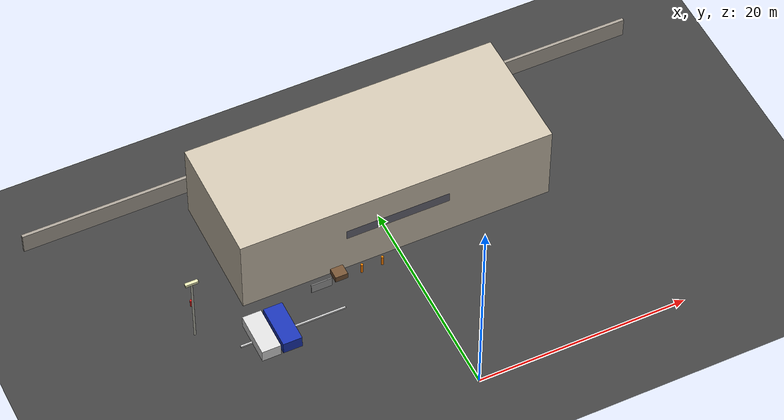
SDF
<sdf version="1.9">
 <world name="togo_parking_lot">
  <model name="ground_plane">
   <static>true</static>
   <link name="link">
    <collision name="collision">
     <geometry><plane><normal>0 0 1</normal><size>200 200</size></plane></geometry>
    </collision>
    <visual name="visual">
     <geometry><plane><normal>0 0 1</normal><size>200 200</size></plane></geometry>
     <material><ambient>0.2 0.2 0.2 1</ambient><diffuse>0.25 0.25 0.25 1</diffuse></material>
    </visual>
   </link>
  </model>
  <model name="wall_north">
   <static>true</static>
   <pose>0 30 1 0 0 0</pose>
   <link name="link">
    <collision name="collision"><geometry><box><size>60 0.3 2</size></box></geometry></collision>
    <visual name="visual">
     <geometry><box><size>60 0.3 2</size></box></geometry>
     <material><ambient>0.65 0.62 0.58 1</ambient><diffuse>0.65 0.62 0.58 1</diffuse></material>
    </visual>
   </link>
  </model>
  <model name="building_main">
   <static>true</static>
   <pose>0 22 4 0 0 0</pose>
   <link name="link">
    <collision name="collision"><geometry><box><size>30 12 8</size></box></geometry></collision>
    <visual name="visual">
     <geometry><box><size>30 12 8</size></box></geometry>
     <material><ambient>0.80 0.76 0.68 1</ambient><diffuse>0.80 0.76 0.68 1</diffuse></material>
    </visual>
   </link>
  </model>
  <model name="building_canopy">
   <static>true</static>
   <pose>0 16.2 4.5 0 0 0</pose>
   <link name="link">
    <collision name="collision"><geometry><box><size>10 0.4 1</size></box></geometry></collision>
    <visual name="visual">
     <geometry><box><size>10 0.4 1</size></box></geometry>
     <material><ambient>0.4 0.4 0.45 1</ambient><diffuse>0.4 0.4 0.45 1</diffuse></material>
    </visual>
   </link>
  </model>
  <model name="curb_row_a_west">
   <static>true</static>
   <pose>-12 12 0.08 0 0 0</pose>
   <link name="link">
    <collision name="collision"><geometry><box><size>10 0.15 0.16</size></box></geometry></collision>
    <visual name="visual">
     <geometry><box><size>10 0.15 0.16</size></box></geometry>
     <material><ambient>0.85 0.85 0.85 1</ambient><diffuse>0.85 0.85 0.85 1</diffuse></material>
    </visual>
   </link>
  </model>
  <model name="car_a2">
   <static>true</static>
   <pose>-15 12 0.4 0 0 0</pose>
   <link name="link">
    <collision name="collision"><geometry><box><size>1.8 4.2 1.5</size></box></geometry></collision>
    <visual name="visual">
     <geometry><box><size>1.8 4.2 1.5</size></box></geometry>
     <material><ambient>0.85 0.85 0.85 1</ambient><diffuse>0.85 0.85 0.85 1</diffuse></material>
    </visual>
   </link>
  </model>
  <model name="car_a3">
   <static>true</static>
   <pose>-13 12 0.4 0 0 0</pose>
   <link name="link">
    <collision name="collision"><geometry><box><size>1.8 4.2 1.5</size></box></geometry></collision>
    <visual name="visual">
     <geometry><box><size>1.8 4.2 1.5</size></box></geometry>
     <material><ambient>0.1 0.2 0.7 1</ambient><diffuse>0.1 0.2 0.7 1</diffuse></material>
    </visual>
   </link>
  </model>
  <model name="lightpole_0">
   <static>true</static>
   <pose>-20 15 3.5 0 0 0</pose>
   <link name="link">
    <collision name="collision">
     <geometry><cylinder><radius>0.1</radius><length>7</length></cylinder></geometry>
    </collision>
    <visual name="visual">
     <geometry><cylinder><radius>0.1</radius><length>7</length></cylinder></geometry>
     <material><ambient>0.7 0.7 0.65 1</ambient><diffuse>0.7 0.7 0.65 1</diffuse></material>
    </visual>
   </link>
  </model>
  <model name="lightpole_0_head">
   <static>true</static>
   <pose>-20 15 7.2 0 0 0</pose>
   <link name="link">
    <collision name="collision"><geometry><box><size>1.2 0.3 0.25</size></box></geometry></collision>
    <visual name="visual">
     <geometry><box><size>1.2 0.3 0.25</size></box></geometry>
     <material><ambient>0.9 0.9 0.7 1</ambient><diffuse>0.9 0.9 0.7 1</diffuse></material>
    </visual>
   </link>
  </model>
  <model name="tree_0_trunk">
   <static>true</static>
   <pose>-5 18 1.2 0 0 0</pose>
   <link name="link">
    <collision name="collision">
     <geometry><cylinder><radius>0.18</radius><length>2.4</length></cylinder></geometry>
    </collision>
    <visual name="visual">
     <geometry><cylinder><radius>0.18</radius><length>2.4</length></cylinder></geometry>
     <material><ambient>0.4 0.25 0.1 1</ambient><diffuse>0.4 0.25 0.1 1</diffuse></material>
    </visual>
   </link>
  </model>
  <model name="tree_0_canopy">
   <static>true</static>
   <pose>-5 18 4.5 0 0 0</pose>
   <link name="link">
    <collision name="collision"><geometry><sphere><radius>1.8</radius></sphere></geometry></collision>
    <visual name="visual">
     <geometry><sphere><radius>1.8</radius></sphere></geometry>
     <material><ambient>0.15 0.45 0.1 1</ambient><diffuse>0.15 0.45 0.1 1</diffuse></material>
    </visual>
   </link>
  </model>
  <model name="planter_left">
   <static>true</static>
   <pose>-6 15.5 0.3 0 0 0</pose>
   <link name="link">
    <collision name="collision"><geometry><box><size>1.2 1.2 0.6</size></box></geometry></collision>
    <visual name="visual">
     <geometry><box><size>1.2 1.2 0.6</size></box></geometry>
     <material><ambient>0.45 0.32 0.2 1</ambient><diffuse>0.45 0.32 0.2 1</diffuse></material>
    </visual>
   </link>
  </model>
  <model name="hydrant_0">
   <static>true</static>
   <pose>-19 18 0.35 0 0 0</pose>
   <link name="link">
    <collision name="collision">
     <geometry><cylinder><radius>0.15</radius><length>0.7</length></cylinder></geometry>
    </collision>
    <visual name="visual">
     <geometry><cylinder><radius>0.15</radius><length>0.7</length></cylinder></geometry>
     <material><ambient>0.9 0.1 0.1 1</ambient><diffuse>0.9 0.1 0.1 1</diffuse></material>
    </visual>
   </link>
  </model>
  <model name="bollard_0">
   <static>true</static>
   <pose>-4 15.0 0.5 0 0 0</pose>
   <link name="link">
    <collision name="c">
     <geometry><cylinder><radius>0.12</radius><length>1.0</length></cylinder></geometry>
    </collision>
    <visual name="v">
     <geometry><cylinder><radius>0.12</radius><length>1.0</length></cylinder></geometry>
     <material><ambient>1.0 0.5 0.0 1</ambient><diffuse>1.0 0.5 0.0 1</diffuse></material>
    </visual>
   </link>
  </model>
  <model name="bollard_1">
   <static>true</static>
   <pose>-2 15.0 0.5 0 0 0</pose>
   <link name="link">
    <collision name="c">
     <geometry><cylinder><radius>0.12</radius><length>1.0</length></cylinder></geometry>
    </collision>
    <visual name="v">
     <geometry><cylinder><radius>0.12</radius><length>1.0</length></cylinder></geometry>
     <material><ambient>1.0 0.5 0.0 1</ambient><diffuse>1.0 0.5 0.0 1</diffuse></material>
    </visual>
   </link>
  </model>
  <model name="bike_rack">
   <static>true</static>
   <pose>-8 14.8 0.5 0 0 0</pose>
   <link name="link">
    <collision name="collision"><geometry><box><size>2.0 0.1 1.0</size></box></geometry></collision>
    <visual name="visual">
     <geometry><box><size>2.0 0.1 1.0</size></box></geometry>
     <material><ambient>0.6 0.6 0.6 1</ambient><diffuse>0.6 0.6 0.6 1</diffuse></material>
    </visual>
   </link>
  </model>
 </world>
</sdf>
